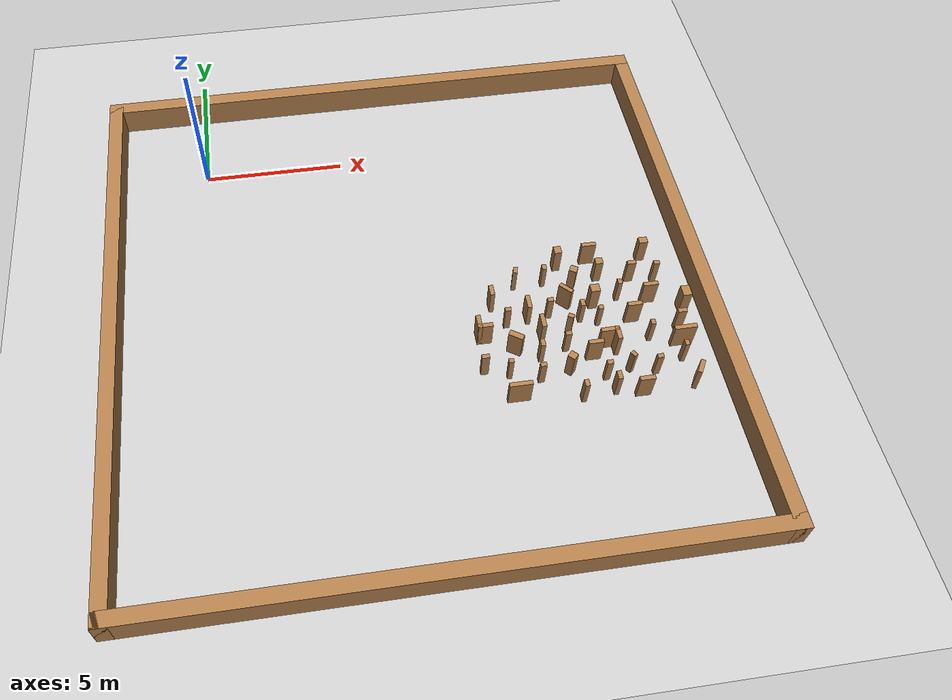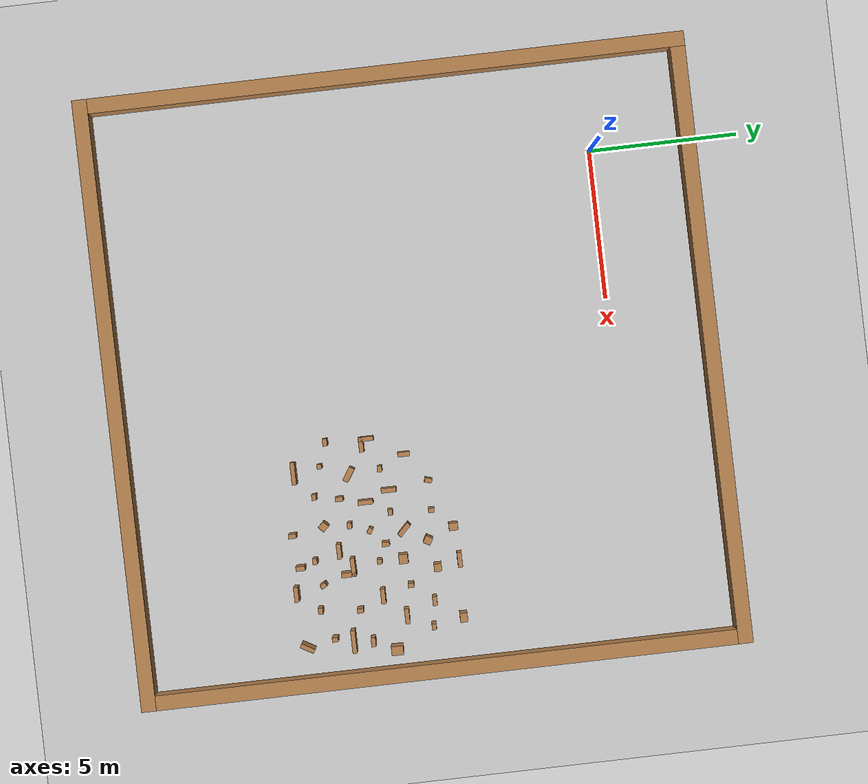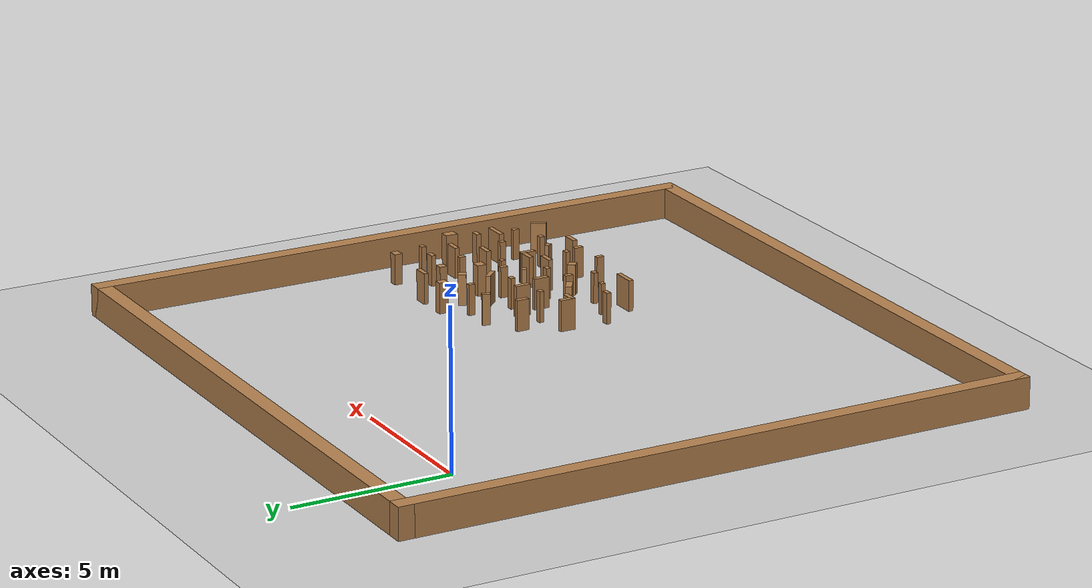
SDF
<sdf version="1.7">
 <world name="default">
  <model name="ground_plane">
   <static>1</static>
   <link name="link">
    <collision name="collision">
     <geometry><plane><normal>0 0 1</normal><size>100 100</size></plane></geometry>
     <surface><friction><ode><mu>100</mu><mu2>50</mu2></ode></friction></surface>
    </collision>
    <visual name="visual">
     <cast_shadows>0</cast_shadows>
     <geometry><plane><normal>0 0 1</normal><size>100 100</size></plane></geometry>
     <material>
      <script><uri>file://media/materials/scripts/gazebo.material</uri><name>Gazebo/Grey</name></script>
     </material>
    </visual>
   </link>
  </model>
  <model name="boundary20x20">
   <pose>6.69964 -6.73932 0 0 -0 0</pose>
   <link name="Wall_0">
    <collision name="Wall_0_Collision">
     <geometry><box><size>20.5 0.5 1</size></box></geometry>
     <pose>0 0 0.5 0 -0 0</pose>
    </collision>
    <visual name="Wall_0_Visual">
     <pose>0 0 0.5 0 -0 0</pose>
     <geometry><box><size>20.5 0.5 1</size></box></geometry>
     <material>
      <script><uri>file://media/materials/scripts/gazebo.material</uri><name>Gazebo/Wood</name></script>
      <ambient>1 1 1 1</ambient>
     </material>
     <meta><layer>0</layer></meta>
    </visual>
    <pose>0 -10 0 0 -0 0</pose>
   </link>
   <link name="Wall_2">
    <collision name="Wall_2_Collision">
     <geometry><box><size>20.5 0.5 1</size></box></geometry>
     <pose>0 0 0.5 0 -0 0</pose>
    </collision>
    <visual name="Wall_2_Visual">
     <pose>0 0 0.5 0 -0 0</pose>
     <geometry><box><size>20.5 0.5 1</size></box></geometry>
     <material>
      <script><uri>file://media/materials/scripts/gazebo.material</uri><name>Gazebo/Wood</name></script>
      <ambient>1 1 1 1</ambient>
     </material>
     <meta><layer>0</layer></meta>
    </visual>
    <pose>-10 0 0 0 -0 -1.5708</pose>
   </link>
   <link name="Wall_4">
    <collision name="Wall_4_Collision">
     <geometry><box><size>20.5 0.5 1</size></box></geometry>
     <pose>0 0 0.5 0 -0 0</pose>
    </collision>
    <visual name="Wall_4_Visual">
     <pose>0 0 0.5 0 -0 0</pose>
     <geometry><box><size>20.5 0.5 1</size></box></geometry>
     <material>
      <script><uri>file://media/materials/scripts/gazebo.material</uri><name>Gazebo/Wood</name></script>
      <ambient>1 1 1 1</ambient>
     </material>
     <meta><layer>0</layer></meta>
    </visual>
    <pose>0 10 0 0 -0 0</pose>
   </link>
   <link name="Wall_8">
    <collision name="Wall_8_Collision">
     <geometry><box><size>20.5 0.5 1</size></box></geometry>
     <pose>0 0 0.5 0 -0 0</pose>
    </collision>
    <visual name="Wall_8_Visual">
     <pose>0 0 0.5 0 -0 0</pose>
     <geometry><box><size>20.5 0.5 1</size></box></geometry>
     <material>
      <script><uri>file://media/materials/scripts/gazebo.material</uri><name>Gazebo/Wood</name></script>
      <ambient>1 1 1 1</ambient>
     </material>
     <meta><layer>0</layer></meta>
    </visual>
    <pose>10 0 0 0 -0 1.5708</pose>
   </link>
   <static>1</static>
  </model>
  <model name="t3">
   <pose>13.1112 -8.6599 0 0 -0 0</pose>
   <link name="Wall_0">
    <collision name="Wall_0_Collision">
     <geometry><box><size>0.5 0.15 1</size></box></geometry>
     <pose>0 0 0.5 0 -0 0</pose>
    </collision>
    <visual name="Wall_0_Visual">
     <pose>0 0 0.5 0 -0 0</pose>
     <geometry><box><size>0.5 0.15 1</size></box></geometry>
     <material>
      <script><uri>file://media/materials/scripts/gazebo.material</uri><name>Gazebo/Wood</name></script>
      <ambient>1 1 1 1</ambient>
     </material>
     <meta><layer>0</layer></meta>
    </visual>
    <pose>1.66746 0.820375 0 0 -0 0</pose>
   </link>
   <link name="Wall_10">
    <collision name="Wall_10_Collision">
     <geometry><box><size>0.16 0.15 1</size></box></geometry>
     <pose>0 0 0.5 0 -0 0</pose>
    </collision>
    <visual name="Wall_10_Visual">
     <pose>0 0 0.5 0 -0 0</pose>
     <geometry><box><size>0.16 0.15 1</size></box></geometry>
     <material>
      <script><uri>file://media/materials/scripts/gazebo.material</uri><name>Gazebo/Wood</name></script>
      <ambient>1 1 1 1</ambient>
     </material>
     <meta><layer>0</layer></meta>
    </visual>
    <pose>-3.61474 -1.52831 0 0 -0 0</pose>
   </link>
   <link name="Wall_101">
    <collision name="Wall_101_Collision">
     <geometry><box><size>0.3 0.25 1</size></box></geometry>
     <pose>0 0 0.5 0 -0 0</pose>
    </collision>
    <visual name="Wall_101_Visual">
     <pose>0 0 0.5 0 -0 0</pose>
     <geometry><box><size>0.3 0.25 1</size></box></geometry>
     <material>
      <script><uri>file://media/materials/scripts/gazebo.material</uri><name>Gazebo/Wood</name></script>
      <ambient>1 1 1 1</ambient>
     </material>
     <meta><layer>0</layer></meta>
    </visual>
    <pose>1.92058 2.69008 0 0 -0 0</pose>
   </link>
   <link name="Wall_103">
    <collision name="Wall_103_Collision">
     <geometry><box><size>0.3 0.25 1</size></box></geometry>
     <pose>0 0 0.5 0 -0 0</pose>
    </collision>
    <visual name="Wall_103_Visual">
     <pose>0 0 0.5 0 -0 0</pose>
     <geometry><box><size>0.3 0.25 1</size></box></geometry>
     <material>
      <script><uri>file://media/materials/scripts/gazebo.material</uri><name>Gazebo/Wood</name></script>
      <ambient>1 1 1 1</ambient>
     </material>
     <meta><layer>0</layer></meta>
    </visual>
    <pose>-1.12732 2.68623 0 0 -0 -1.5708</pose>
   </link>
   <link name="Wall_105">
    <collision name="Wall_105_Collision">
     <geometry><box><size>0.4 0.15 1</size></box></geometry>
     <pose>0 0 0.5 0 -0 0</pose>
    </collision>
    <visual name="Wall_105_Visual">
     <pose>0 0 0.5 0 -0 0</pose>
     <geometry><box><size>0.4 0.15 1</size></box></geometry>
     <material>
      <script><uri>file://media/materials/scripts/gazebo.material</uri><name>Gazebo/Wood</name></script>
      <ambient>1 1 1 1</ambient>
     </material>
     <meta><layer>0</layer></meta>
    </visual>
    <pose>-3.71052 1.31197 0 0 -0 -1.5708</pose>
   </link>
   <link name="Wall_12">
    <collision name="Wall_12_Collision">
     <geometry><box><size>0.2 0.15 1</size></box></geometry>
     <pose>0 0 0.5 0 -0 0</pose>
    </collision>
    <visual name="Wall_12_Visual">
     <pose>0 0 0.5 0 -0 0</pose>
     <geometry><box><size>0.2 0.15 1</size></box></geometry>
     <material>
      <script><uri>file://media/materials/scripts/gazebo.material</uri><name>Gazebo/Wood</name></script>
      <ambient>1 1 1 1</ambient>
     </material>
     <meta><layer>0</layer></meta>
    </visual>
    <pose>0.345155 -1.83153 0 0 -0 -1.0472</pose>
   </link>
   <link name="Wall_14">
    <collision name="Wall_14_Collision">
     <geometry><box><size>0.3 0.15 1</size></box></geometry>
     <pose>0 0 0.5 0 -0 0</pose>
    </collision>
    <visual name="Wall_14_Visual">
     <pose>0 0 0.5 0 -0 0</pose>
     <geometry><box><size>0.3 0.15 1</size></box></geometry>
     <material>
      <script><uri>file://media/materials/scripts/gazebo.material</uri><name>Gazebo/Wood</name></script>
      <ambient>1 1 1 1</ambient>
     </material>
     <meta><layer>0</layer></meta>
    </visual>
    <pose>-0.315653 -2.53577 0 0 -0 -1.5708</pose>
   </link>
   <link name="Wall_16">
    <collision name="Wall_16_Collision">
     <geometry><box><size>0.500019 0.15 1</size></box></geometry>
     <pose>0 0 0.5 0 -0 0</pose>
    </collision>
    <visual name="Wall_16_Visual">
     <pose>0 0 0.5 0 -0 0</pose>
     <geometry><box><size>0.500019 0.15 1</size></box></geometry>
     <material>
      <script><uri>file://media/materials/scripts/gazebo.material</uri><name>Gazebo/Wood</name></script>
      <ambient>1 1 1 1</ambient>
     </material>
     <meta><layer>0</layer></meta>
    </visual>
    <pose>-1.206 1.05009 0 0 -0 -0.783378</pose>
   </link>
   <link name="Wall_18">
    <collision name="Wall_18_Collision">
     <geometry><box><size>0.2 0.15 1</size></box></geometry>
     <pose>0 0 0.5 0 -0 0</pose>
    </collision>
    <visual name="Wall_18_Visual">
     <pose>0 0 0.5 0 -0 0</pose>
     <geometry><box><size>0.2 0.15 1</size></box></geometry>
     <material>
      <script><uri>file://media/materials/scripts/gazebo.material</uri><name>Gazebo/Wood</name></script>
      <ambient>1 1 1 1</ambient>
     </material>
     <meta><layer>0</layer></meta>
    </visual>
    <pose>-3.31884 0.461137 0 0 -0 0</pose>
   </link>
   <link name="Wall_2">
    <collision name="Wall_2_Collision">
     <geometry><box><size>0.2 0.15 1</size></box></geometry>
     <pose>0 0 0.5 0 -0 0</pose>
    </collision>
    <visual name="Wall_2_Visual">
     <pose>0 0 0.5 0 -0 0</pose>
     <geometry><box><size>0.2 0.15 1</size></box></geometry>
     <material>
      <script><uri>file://media/materials/scripts/gazebo.material</uri><name>Gazebo/Wood</name></script>
      <ambient>1 1 1 1</ambient>
     </material>
     <meta><layer>0</layer></meta>
    </visual>
    <pose>-1.54946 -0.752053 0 0 -0 3.14159</pose>
   </link>
   <link name="Wall_21">
    <collision name="Wall_21_Collision">
     <geometry><box><size>0.500017 0.2 1</size></box></geometry>
     <pose>0 0 0.5 0 -0 0</pose>
    </collision>
    <visual name="Wall_21_Visual">
     <pose>0 0 0.5 0 -0 0</pose>
     <geometry><box><size>0.500017 0.2 1</size></box></geometry>
     <material>
      <script><uri>file://media/materials/scripts/gazebo.material</uri><name>Gazebo/Wood</name></script>
      <ambient>1 1 1 1</ambient>
     </material>
     <meta><layer>0</layer></meta>
    </visual>
    <pose>-3.24734 -0.581877 0 0 -0 -0.586607</pose>
   </link>
   <link name="Wall_23">
    <collision name="Wall_23_Collision">
     <geometry><box><size>0.16 0.15 1</size></box></geometry>
     <pose>0 0 0.5 0 -0 0</pose>
    </collision>
    <visual name="Wall_23_Visual">
     <pose>0 0 0.5 0 -0 0</pose>
     <geometry><box><size>0.16 0.15 1</size></box></geometry>
     <material>
      <script><uri>file://media/materials/scripts/gazebo.material</uri><name>Gazebo/Wood</name></script>
      <ambient>1 1 1 1</ambient>
     </material>
     <meta><layer>0</layer></meta>
    </visual>
    <pose>-0.243057 0.114303 0 0 -0 0</pose>
   </link>
   <link name="Wall_25">
    <collision name="Wall_25_Collision">
     <geometry><box><size>0.2 0.15 1</size></box></geometry>
     <pose>0 0 0.5 0 -0 0</pose>
    </collision>
    <visual name="Wall_25_Visual">
     <pose>0 0 0.5 0 -0 0</pose>
     <geometry><box><size>0.2 0.15 1</size></box></geometry>
     <material>
      <script><uri>file://media/materials/scripts/gazebo.material</uri><name>Gazebo/Wood</name></script>
      <ambient>1 1 1 1</ambient>
     </material>
     <meta><layer>0</layer></meta>
    </visual>
    <pose>2.16845 -1.64842 0 0 -0 -1.5708</pose>
   </link>
   <link name="Wall_27">
    <collision name="Wall_27_Collision">
     <geometry><box><size>0.2 0.15 1</size></box></geometry>
     <pose>0 0 0.5 0 -0 0</pose>
    </collision>
    <visual name="Wall_27_Visual">
     <pose>0 0 0.5 0 -0 0</pose>
     <geometry><box><size>0.2 0.15 1</size></box></geometry>
     <material>
      <script><uri>file://media/materials/scripts/gazebo.material</uri><name>Gazebo/Wood</name></script>
      <ambient>1 1 1 1</ambient>
     </material>
     <meta><layer>0</layer></meta>
    </visual>
    <pose>-2.62173 -1.81651 0 0 -0 0</pose>
   </link>
   <link name="Wall_29">
    <collision name="Wall_29_Collision">
     <geometry><box><size>0.2 0.15 1</size></box></geometry>
     <pose>0 0 0.5 0 -0 0</pose>
    </collision>
    <visual name="Wall_29_Visual">
     <pose>0 0 0.5 0 -0 0</pose>
     <geometry><box><size>0.2 0.15 1</size></box></geometry>
     <material>
      <script><uri>file://media/materials/scripts/gazebo.material</uri><name>Gazebo/Wood</name></script>
      <ambient>1 1 1 1</ambient>
     </material>
     <meta><layer>0</layer></meta>
    </visual>
    <pose>-1.30254 -0.087055 0 0 -0 -0.523599</pose>
   </link>
   <link name="Wall_34">
    <collision name="Wall_34_Collision">
     <geometry><box><size>0.26 0.25 1</size></box></geometry>
     <pose>0 0 0.5 0 -0 0</pose>
    </collision>
    <visual name="Wall_34_Visual">
     <pose>0 0 0.5 0 -0 0</pose>
     <geometry><box><size>0.26 0.25 1</size></box></geometry>
     <material>
      <script><uri>file://media/materials/scripts/gazebo.material</uri><name>Gazebo/Wood</name></script>
      <ambient>1 1 1 1</ambient>
     </material>
     <meta><layer>0</layer></meta>
    </visual>
    <pose>-1.60867 -1.6112 0 0 -0 -0.785398</pose>
   </link>
   <link name="Wall_36">
    <collision name="Wall_36_Collision">
     <geometry><box><size>0.26 0.25 1</size></box></geometry>
     <pose>0 0 0.5 0 -0 0</pose>
    </collision>
    <visual name="Wall_36_Visual">
     <pose>0 0 0.5 0 -0 0</pose>
     <geometry><box><size>0.26 0.25 1</size></box></geometry>
     <material>
      <script><uri>file://media/materials/scripts/gazebo.material</uri><name>Gazebo/Wood</name></script>
      <ambient>1 1 1 1</ambient>
     </material>
     <meta><layer>0</layer></meta>
    </visual>
    <pose>0.169876 2.01672 0 0 -0 0</pose>
   </link>
   <link name="Wall_38">
    <collision name="Wall_38_Collision">
     <geometry><box><size>0.26 0.25 1</size></box></geometry>
     <pose>0 0 0.5 0 -0 0</pose>
    </collision>
    <visual name="Wall_38_Visual">
     <pose>0 0 0.5 0 -0 0</pose>
     <geometry><box><size>0.26 0.25 1</size></box></geometry>
     <material>
      <script><uri>file://media/materials/scripts/gazebo.material</uri><name>Gazebo/Wood</name></script>
      <ambient>1 1 1 1</ambient>
     </material>
     <meta><layer>0</layer></meta>
    </visual>
    <pose>-0.77055 1.79813 0 0 -0 -0.523599</pose>
   </link>
   <link name="Wall_4">
    <collision name="Wall_4_Collision">
     <geometry><box><size>0.2 0.15 1</size></box></geometry>
     <pose>0 0 0.5 0 -0 0</pose>
    </collision>
    <visual name="Wall_4_Visual">
     <pose>0 0 0.5 0 -0 0</pose>
     <geometry><box><size>0.2 0.15 1</size></box></geometry>
     <material>
      <script><uri>file://media/materials/scripts/gazebo.material</uri><name>Gazebo/Wood</name></script>
      <ambient>1 1 1 1</ambient>
     </material>
     <meta><layer>0</layer></meta>
    </visual>
    <pose>0.654729 1.06249 0 0 -0 -1.5708</pose>
   </link>
   <link name="Wall_47">
    <collision name="Wall_47_Collision">
     <geometry><box><size>0.5 0.15 1</size></box></geometry>
     <pose>0 0 0.5 0 -0 0</pose>
    </collision>
    <visual name="Wall_47_Visual">
     <pose>0 0 0.5 0 -0 0</pose>
     <geometry><box><size>0.5 0.15 1</size></box></geometry>
     <material>
      <script><uri>file://media/materials/scripts/gazebo.material</uri><name>Gazebo/Wood</name></script>
      <ambient>1 1 1 1</ambient>
     </material>
     <meta><layer>0</layer></meta>
    </visual>
    <pose>-2.26078 -0.133218 0 0 -0 -1.5708</pose>
   </link>
   <link name="Wall_49">
    <collision name="Wall_49_Collision">
     <geometry><box><size>0.2 0.15 1</size></box></geometry>
     <pose>0 0 0.5 0 -0 0</pose>
    </collision>
    <visual name="Wall_49_Visual">
     <pose>0 0 0.5 0 -0 0</pose>
     <geometry><box><size>0.2 0.15 1</size></box></geometry>
     <material>
      <script><uri>file://media/materials/scripts/gazebo.material</uri><name>Gazebo/Wood</name></script>
      <ambient>1 1 1 1</ambient>
     </material>
     <meta><layer>0</layer></meta>
    </visual>
    <pose>-0.491077 -2.02631 0 0 -0 0</pose>
   </link>
   <link name="Wall_51">
    <collision name="Wall_51_Collision">
     <geometry><box><size>0.598262 0.15 1</size></box></geometry>
     <pose>0 0 0.5 0 -0 0</pose>
    </collision>
    <visual name="Wall_51_Visual">
     <pose>0 0 0.5 0 -0 0</pose>
     <geometry><box><size>0.598262 0.15 1</size></box></geometry>
     <material>
      <script><uri>file://media/materials/scripts/gazebo.material</uri><name>Gazebo/Wood</name></script>
      <ambient>1 1 1 1</ambient>
     </material>
     <meta><layer>0</layer></meta>
    </visual>
    <pose>-0.165519 -0.784493 0 0 -0 0.021322</pose>
   </link>
   <link name="Wall_52">
    <collision name="Wall_52_Collision">
     <geometry><box><size>0.5 0.15 1</size></box></geometry>
     <pose>0 0 0.5 0 -0 0</pose>
    </collision>
    <visual name="Wall_52_Visual">
     <pose>0 0 0.5 0 -0 0</pose>
     <geometry><box><size>0.5 0.15 1</size></box></geometry>
     <material>
      <script><uri>file://media/materials/scripts/gazebo.material</uri><name>Gazebo/Wood</name></script>
      <ambient>1 1 1 1</ambient>
     </material>
     <meta><layer>0</layer></meta>
    </visual>
    <pose>0.07377 -0.954715 0 0 -0 -1.5708</pose>
   </link>
   <link name="Wall_54">
    <collision name="Wall_54_Collision">
     <geometry><box><size>0.5 0.15 1</size></box></geometry>
     <pose>0 0 0.5 0 -0 0</pose>
    </collision>
    <visual name="Wall_54_Visual">
     <pose>0 0 0.5 0 -0 0</pose>
     <geometry><box><size>0.5 0.15 1</size></box></geometry>
     <material>
      <script><uri>file://media/materials/scripts/gazebo.material</uri><name>Gazebo/Wood</name></script>
      <ambient>1 1 1 1</ambient>
     </material>
     <meta><layer>0</layer></meta>
    </visual>
    <pose>-0.734374 -1.19269 0 0 -0 0</pose>
   </link>
   <link name="Wall_56">
    <collision name="Wall_56_Collision">
     <geometry><box><size>0.25 0.15 1</size></box></geometry>
     <pose>0 0 0.5 0 -0 0</pose>
    </collision>
    <visual name="Wall_56_Visual">
     <pose>0 0 0.5 0 -0 0</pose>
     <geometry><box><size>0.25 0.15 1</size></box></geometry>
     <material>
      <script><uri>file://media/materials/scripts/gazebo.material</uri><name>Gazebo/Wood</name></script>
      <ambient>1 1 1 1</ambient>
     </material>
     <meta><layer>0</layer></meta>
    </visual>
    <pose>-2.464 -0.98934 0 0 -0 -1.5708</pose>
   </link>
   <link name="Wall_58">
    <collision name="Wall_58_Collision">
     <geometry><box><size>0.5 0.15 1</size></box></geometry>
     <pose>0 0 0.5 0 -0 0</pose>
    </collision>
    <visual name="Wall_58_Visual">
     <pose>0 0 0.5 0 -0 0</pose>
     <geometry><box><size>0.5 0.15 1</size></box></geometry>
     <material>
      <script><uri>file://media/materials/scripts/gazebo.material</uri><name>Gazebo/Wood</name></script>
      <ambient>1 1 1 1</ambient>
     </material>
     <meta><layer>0</layer></meta>
    </visual>
    <pose>0.919451 0.098458 0 0 -0 0</pose>
   </link>
   <link name="Wall_6">
    <collision name="Wall_6_Collision">
     <geometry><box><size>0.25 0.15 1</size></box></geometry>
     <pose>0 0 0.5 0 -0 0</pose>
    </collision>
    <visual name="Wall_6_Visual">
     <pose>0 0 0.5 0 -0 0</pose>
     <geometry><box><size>0.25 0.15 1</size></box></geometry>
     <material>
      <script><uri>file://media/materials/scripts/gazebo.material</uri><name>Gazebo/Wood</name></script>
      <ambient>1 1 1 1</ambient>
     </material>
     <meta><layer>0</layer></meta>
    </visual>
    <pose>-0.798296 0.378741 0 0 -0 -1.5708</pose>
   </link>
   <link name="Wall_60">
    <collision name="Wall_60_Collision">
     <geometry><box><size>0.3 0.15 1</size></box></geometry>
     <pose>0 0 0.5 0 -0 0</pose>
    </collision>
    <visual name="Wall_60_Visual">
     <pose>0 0 0.5 0 -0 0</pose>
     <geometry><box><size>0.3 0.15 1</size></box></geometry>
     <material>
      <script><uri>file://media/materials/scripts/gazebo.material</uri><name>Gazebo/Wood</name></script>
      <ambient>1 1 1 1</ambient>
     </material>
     <meta><layer>0</layer></meta>
    </visual>
    <pose>2.39596 -0.393573 0 0 -0 0</pose>
   </link>
   <link name="Wall_62">
    <collision name="Wall_62_Collision">
     <geometry><box><size>0.2 0.15 1</size></box></geometry>
     <pose>0 0 0.5 0 -0 0</pose>
    </collision>
    <visual name="Wall_62_Visual">
     <pose>0 0 0.5 0 -0 0</pose>
     <geometry><box><size>0.2 0.15 1</size></box></geometry>
     <material>
      <script><uri>file://media/materials/scripts/gazebo.material</uri><name>Gazebo/Wood</name></script>
      <ambient>1 1 1 1</ambient>
     </material>
     <meta><layer>0</layer></meta>
    </visual>
    <pose>1.30617 -0.710135 0 0 -0 -1.5708</pose>
   </link>
   <link name="Wall_64">
    <collision name="Wall_64_Collision">
     <geometry><box><size>0.5 0.15 1</size></box></geometry>
     <pose>0 0 0.5 0 -0 0</pose>
    </collision>
    <visual name="Wall_64_Visual">
     <pose>0 0 0.5 0 -0 0</pose>
     <geometry><box><size>0.5 0.15 1</size></box></geometry>
     <material>
      <script><uri>file://media/materials/scripts/gazebo.material</uri><name>Gazebo/Wood</name></script>
      <ambient>1 1 1 1</ambient>
     </material>
     <meta><layer>0</layer></meta>
    </visual>
    <pose>2.3525 -2.59484 0 0 -0 -2.09455</pose>
   </link>
   <link name="Wall_66">
    <collision name="Wall_66_Collision">
     <geometry><box><size>0.2 0.15 1</size></box></geometry>
     <pose>0 0 0.5 0 -0 0</pose>
    </collision>
    <visual name="Wall_66_Visual">
     <pose>0 0 0.5 0 -0 0</pose>
     <geometry><box><size>0.2 0.15 1</size></box></geometry>
     <material>
      <script><uri>file://media/materials/scripts/gazebo.material</uri><name>Gazebo/Wood</name></script>
      <ambient>1 1 1 1</ambient>
     </material>
     <meta><layer>0</layer></meta>
    </visual>
    <pose>-1.74881 2.01899 0 0 -0 -1.5708</pose>
   </link>
   <link name="Wall_68">
    <collision name="Wall_68_Collision">
     <geometry><box><size>0.75 0.15 1</size></box></geometry>
     <pose>0 0 0.5 0 -0 0</pose>
    </collision>
    <visual name="Wall_68_Visual">
     <pose>0 0 0.5 0 -0 0</pose>
     <geometry><box><size>0.75 0.15 1</size></box></geometry>
     <material>
      <script><uri>file://media/materials/scripts/gazebo.material</uri><name>Gazebo/Wood</name></script>
      <ambient>1 1 1 1</ambient>
     </material>
     <meta><layer>0</layer></meta>
    </visual>
    <pose>-3.4807 -2.41524 0 0 -0 0</pose>
   </link>
   <link name="Wall_70">
    <collision name="Wall_70_Collision">
     <geometry><box><size>0.3 0.15 1</size></box></geometry>
     <pose>0 0 0.5 0 -0 0</pose>
    </collision>
    <visual name="Wall_70_Visual">
     <pose>0 0 0.5 0 -0 0</pose>
     <geometry><box><size>0.3 0.15 1</size></box></geometry>
     <material>
      <script><uri>file://media/materials/scripts/gazebo.material</uri><name>Gazebo/Wood</name></script>
      <ambient>1 1 1 1</ambient>
     </material>
     <meta><layer>0</layer></meta>
    </visual>
    <pose>1.26783 1.79464 0 0 -0 0</pose>
   </link>
   <link name="Wall_72">
    <collision name="Wall_72_Collision">
     <geometry><box><size>0.2 0.15 1</size></box></geometry>
     <pose>0 0 0.5 0 -0 0</pose>
    </collision>
    <visual name="Wall_72_Visual">
     <pose>0 0 0.5 0 -0 0</pose>
     <geometry><box><size>0.2 0.15 1</size></box></geometry>
     <material>
      <script><uri>file://media/materials/scripts/gazebo.material</uri><name>Gazebo/Wood</name></script>
      <ambient>1 1 1 1</ambient>
     </material>
     <meta><layer>0</layer></meta>
    </visual>
    <pose>1.16925 -2.02671 0 0 -0 0</pose>
   </link>
   <link name="Wall_74">
    <collision name="Wall_74_Collision">
     <geometry><box><size>0.2 0.15 1</size></box></geometry>
     <pose>0 0 0.5 0 -0 0</pose>
    </collision>
    <visual name="Wall_74_Visual">
     <pose>0 0 0.5 0 -0 0</pose>
     <geometry><box><size>0.2 0.15 1</size></box></geometry>
     <material>
      <script><uri>file://media/materials/scripts/gazebo.material</uri><name>Gazebo/Wood</name></script>
      <ambient>1 1 1 1</ambient>
     </material>
     <meta><layer>0</layer></meta>
    </visual>
    <pose>2.11414 1.67303 0 0 -0 0</pose>
   </link>
   <link name="Wall_76">
    <collision name="Wall_76_Collision">
     <geometry><box><size>0.5 0.15 1</size></box></geometry>
     <pose>0 0 0.5 0 -0 0</pose>
    </collision>
    <visual name="Wall_76_Visual">
     <pose>0 0 0.5 0 -0 0</pose>
     <geometry><box><size>0.5 0.15 1</size></box></geometry>
     <material>
      <script><uri>file://media/materials/scripts/gazebo.material</uri><name>Gazebo/Wood</name></script>
      <ambient>1 1 1 1</ambient>
     </material>
     <meta><layer>0</layer></meta>
    </visual>
    <pose>0.532343 -2.76686 0 0 -0 0</pose>
   </link>
   <link name="Wall_78">
    <collision name="Wall_78_Collision">
     <geometry><box><size>0.31 0.3 1</size></box></geometry>
     <pose>0 0 0.5 0 -0 0</pose>
    </collision>
    <visual name="Wall_78_Visual">
     <pose>0 0 0.5 0 -0 0</pose>
     <geometry><box><size>0.31 0.3 1</size></box></geometry>
     <material>
      <script><uri>file://media/materials/scripts/gazebo.material</uri><name>Gazebo/Wood</name></script>
      <ambient>1 1 1 1</ambient>
     </material>
     <meta><layer>0</layer></meta>
    </visual>
    <pose>-0.245097 0.910516 0 0 -0 0</pose>
   </link>
   <link name="Wall_8">
    <collision name="Wall_8_Collision">
     <geometry><box><size>0.25 0.15 1</size></box></geometry>
     <pose>0 0 0.5 0 -0 0</pose>
    </collision>
    <visual name="Wall_8_Visual">
     <pose>0 0 0.5 0 -0 0</pose>
     <geometry><box><size>0.25 0.15 1</size></box></geometry>
     <material>
      <script><uri>file://media/materials/scripts/gazebo.material</uri><name>Gazebo/Wood</name></script>
      <ambient>1 1 1 1</ambient>
     </material>
     <meta><layer>0</layer></meta>
    </visual>
    <pose>-1.416 -2.68134 0 0 -0 -1.5708</pose>
   </link>
   <link name="Wall_80">
    <collision name="Wall_80_Collision">
     <geometry><box><size>0.4 0.3 1</size></box></geometry>
     <pose>0 0 0.5 0 -0 0</pose>
    </collision>
    <visual name="Wall_80_Visual">
     <pose>0 0 0.5 0 -0 0</pose>
     <geometry><box><size>0.4 0.3 1</size></box></geometry>
     <material>
      <script><uri>file://media/materials/scripts/gazebo.material</uri><name>Gazebo/Wood</name></script>
      <ambient>1 1 1 1</ambient>
     </material>
     <meta><layer>0</layer></meta>
    </visual>
    <pose>2.76536 0.368724 0 0 -0 1.5708</pose>
   </link>
   <link name="Wall_86">
    <collision name="Wall_86_Collision">
     <geometry><box><size>0.75 0.15 1</size></box></geometry>
     <pose>0 0 0.5 0 -0 0</pose>
    </collision>
    <visual name="Wall_86_Visual">
     <pose>0 0 0.5 0 -0 0</pose>
     <geometry><box><size>0.75 0.15 1</size></box></geometry>
     <material>
      <script><uri>file://media/materials/scripts/gazebo.material</uri><name>Gazebo/Wood</name></script>
      <ambient>1 1 1 1</ambient>
     </material>
     <meta><layer>0</layer></meta>
    </visual>
    <pose>2.31503 -1.0434 0 0 -0 0</pose>
   </link>
   <link name="Wall_88">
    <collision name="Wall_88_Collision">
     <geometry><box><size>0.5 0.15 1</size></box></geometry>
     <pose>0 0 0.5 0 -0 0</pose>
    </collision>
    <visual name="Wall_88_Visual">
     <pose>0 0 0.5 0 -0 0</pose>
     <geometry><box><size>0.5 0.15 1</size></box></geometry>
     <material>
      <script><uri>file://media/materials/scripts/gazebo.material</uri><name>Gazebo/Wood</name></script>
      <ambient>1 1 1 1</ambient>
     </material>
     <meta><layer>0</layer></meta>
    </visual>
    <pose>-4.36 0.11266 0 0 -0 -1.5708</pose>
   </link>
   <link name="Wall_89">
    <collision name="Wall_89_Collision">
     <geometry><box><size>0.5 0.15 1</size></box></geometry>
     <pose>0 0 0.5 0 -0 0</pose>
    </collision>
    <visual name="Wall_89_Visual">
     <pose>0 0 0.5 0 -0 0</pose>
     <geometry><box><size>0.5 0.15 1</size></box></geometry>
     <material>
      <script><uri>file://media/materials/scripts/gazebo.material</uri><name>Gazebo/Wood</name></script>
      <ambient>1 1 1 1</ambient>
     </material>
     <meta><layer>0</layer></meta>
    </visual>
    <pose>-4.185 -0.062339 0 0 -0 0</pose>
   </link>
   <link name="Wall_91">
    <collision name="Wall_91_Collision">
     <geometry><box><size>0.25 0.15 1</size></box></geometry>
     <pose>0 0 0.5 0 -0 0</pose>
    </collision>
    <visual name="Wall_91_Visual">
     <pose>0 0 0.5 0 -0 0</pose>
     <geometry><box><size>0.25 0.15 1</size></box></geometry>
     <material>
      <script><uri>file://media/materials/scripts/gazebo.material</uri><name>Gazebo/Wood</name></script>
      <ambient>1 1 1 1</ambient>
     </material>
     <meta><layer>0</layer></meta>
    </visual>
    <pose>-4.401 -1.25234 0 0 -0 0</pose>
   </link>
   <link name="Wall_93">
    <collision name="Wall_93_Collision">
     <geometry><box><size>0.2 0.15 1</size></box></geometry>
     <pose>0 0 0.5 0 -0 0</pose>
    </collision>
    <visual name="Wall_93_Visual">
     <pose>0 0 0.5 0 -0 0</pose>
     <geometry><box><size>0.2 0.15 1</size></box></geometry>
     <material>
      <script><uri>file://media/materials/scripts/gazebo.material</uri><name>Gazebo/Wood</name></script>
      <ambient>1 1 1 1</ambient>
     </material>
     <meta><layer>0</layer></meta>
    </visual>
    <pose>-1.83633 0.650206 0 0 -0 0</pose>
   </link>
   <link name="Wall_95">
    <collision name="Wall_95_Collision">
     <geometry><box><size>0.25 0.15 1</size></box></geometry>
     <pose>0 0 0.5 0 -0 0</pose>
    </collision>
    <visual name="Wall_95_Visual">
     <pose>0 0 0.5 0 -0 0</pose>
     <geometry><box><size>0.25 0.15 1</size></box></geometry>
     <material>
      <script><uri>file://media/materials/scripts/gazebo.material</uri><name>Gazebo/Wood</name></script>
      <ambient>1 1 1 1</ambient>
     </material>
     <meta><layer>0</layer></meta>
    </visual>
    <pose>-2.752 2.03016 0 0 -0 -1.83268</pose>
   </link>
   <link name="Wall_97">
    <collision name="Wall_97_Collision">
     <geometry><box><size>0.5 0.15 1</size></box></geometry>
     <pose>0 0 0.5 0 -0 0</pose>
    </collision>
    <visual name="Wall_97_Visual">
     <pose>0 0 0.5 0 -0 0</pose>
     <geometry><box><size>0.5 0.15 1</size></box></geometry>
     <material>
      <script><uri>file://media/materials/scripts/gazebo.material</uri><name>Gazebo/Wood</name></script>
      <ambient>1 1 1 1</ambient>
     </material>
     <meta><layer>0</layer></meta>
    </visual>
    <pose>-0.003416 2.77384 0 0 -0 0</pose>
   </link>
   <link name="Wall_99">
    <collision name="Wall_99_Collision">
     <geometry><box><size>0.5 0.15 1</size></box></geometry>
     <pose>0 0 0.5 0 -0 0</pose>
    </collision>
    <visual name="Wall_99_Visual">
     <pose>0 0 0.5 0 -0 0</pose>
     <geometry><box><size>0.5 0.15 1</size></box></geometry>
     <material>
      <script><uri>file://media/materials/scripts/gazebo.material</uri><name>Gazebo/Wood</name></script>
      <ambient>1 1 1 1</ambient>
     </material>
     <meta><layer>0</layer></meta>
    </visual>
    <pose>-2.577 0.677661 0 0 -0 -1.5708</pose>
   </link>
   <static>1</static>
  </model>
 </world>
</sdf>
